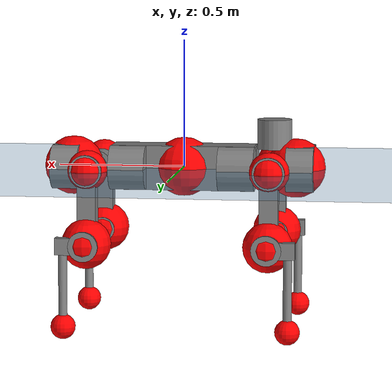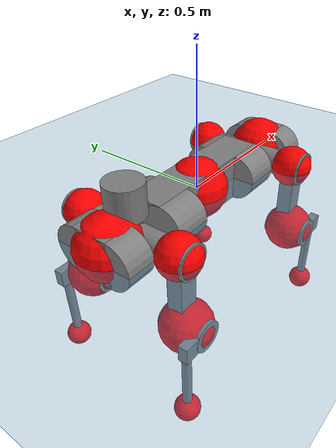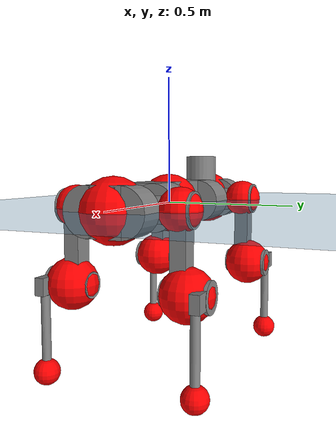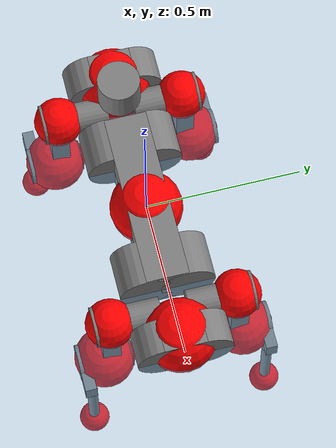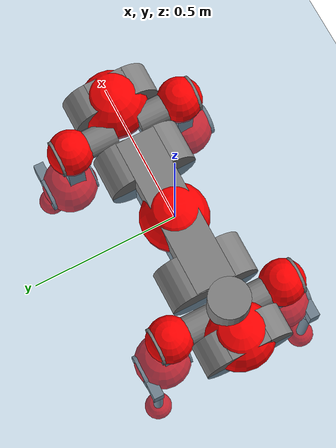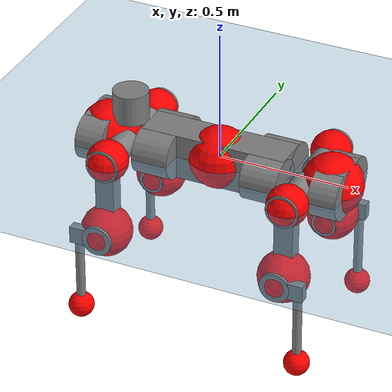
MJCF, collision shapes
<mujoco model="anymal_c">
  <compiler angle="radian" assetdir="assets" balanceinertia="true" inertiafromgeom="false"/>

  <option timestep="0.005" density="1.2" viscosity="2e-05"/>

  <size nkey="1"/>

  <visual>
    <quality shadowsize="8192"/>
    <map shadowclip="0.5"/>
  </visual>

  <default>
    <default class="/">
      <material specular="0" shininess="0.25"/>
      <geom contype="0" conaffinity="0" group="1" solref="-1000 -80"/>
      <site size="0.01 0.005 0.005" group="5"/>
      <general forcelimited="true" forcerange="-80 80" biastype="affine" gainprm="80" biasprm="0 -80 -2"/>
      <default class="anymal_c">
        <joint armature="0.01" damping="0.01" frictionloss="0.1"/>
        <default class="visual">
          <geom type="mesh" group="2"/>
          <default class="visual_zflip"/>
        </default>
        <default class="collision">
          <geom type="cylinder" group="3"/>
          <default class="foot">
            <geom size="0.03 0 0" type="sphere" condim="6" priority="1" friction="0.8 0.02 0.01" solimp="0.015 1 0.03"/>
          </default>
        </default>
      </default>
      <default class="reward_collision_sphere">
        <geom group="5" rgba="1 0 0 1"/>
      </default>
    </default>
  </default>

  <asset>
    <texture type="skybox" colorspace="auto" name="//unnamed_texture_0" builtin="gradient" rgb1="0.95 0.95 0.95" rgb2="0.95 0.95 0.95" width="100" height="600"/>
    <texture type="2d" colorspace="auto" name="texplane" builtin="checker" rgb1="0.345 0.575 0.748" rgb2="0.345 0.575 0.748" markrgb="1 1 1" width="512" height="512"/>
    <texture type="2d" colorspace="linear" name="base" file="base.png"/>
    <texture type="2d" colorspace="linear" name="top_shell" file="top_shell.png"/>
    <texture type="2d" colorspace="linear" name="bottom_shell" file="bottom_shell.png"/>
    <texture type="2d" colorspace="linear" name="remote" file="remote.png"/>
    <texture type="2d" colorspace="linear" name="hatch" file="hatch.png"/>
    <texture type="2d" colorspace="linear" name="handle" file="handle.png"/>
    <texture type="2d" colorspace="linear" name="face" file="face.png"/>
    <texture type="2d" colorspace="linear" name="battery" file="battery.png"/>
    <texture type="2d" colorspace="linear" name="lidar_cage" file="lidar_cage.png"/>
    <texture type="2d" colorspace="linear" name="depth_camera" file="depth_camera.png"/>
    <texture type="2d" colorspace="linear" name="wide_angle_camera" file="wide_angle_camera.png"/>
    <texture type="2d" colorspace="linear" name="lidar" file="lidar.png"/>
    <texture type="2d" colorspace="linear" name="drive" file="drive.png"/>
    <texture type="2d" colorspace="linear" name="hip_l" file="hip_l.png"/>
    <texture type="2d" colorspace="linear" name="shank_l" file="shank_l.png"/>
    <texture type="2d" colorspace="linear" name="foot" file="foot.png"/>
    <texture type="2d" colorspace="linear" name="thigh" file="thigh.png"/>
    <texture type="2d" colorspace="linear" name="shank_r" file="shank_r.png"/>
    <texture type="2d" colorspace="linear" name="hip_r" file="hip_r.png"/>
    <material name="MatPlane" class="/" texture="texplane" texuniform="true" texrepeat="2 2" specular="0.9" shininess="0.5"/>
    <material name="black_plastic" class="/" rgba="0.007 0.007 0.007 1"/>
    <material name="green" class="/" rgba="0.052 0.178 0.033 1"/>
    <material name="red" class="/" rgba="0.178 0.006 0.005 1"/>
    <material name="yellow" class="/" rgba="0.178 0.119 0.006 1"/>
    <material name="lwl" class="/" rgba="0.8 0.8 0.8 1"/>
    <material name="base" class="/" texture="base"/>
    <material name="top_shell" class="/" texture="top_shell"/>
    <material name="bottom_shell" class="/" texture="bottom_shell"/>
    <material name="hip_l" class="/" texture="hip_l"/>
    <material name="thigh" class="/" texture="thigh"/>
    <material name="shank_l" class="/" texture="shank_l"/>
    <material name="foot" class="/" texture="foot"/>
    <material name="hip_r" class="/" texture="hip_r"/>
    <material name="shank" class="/" texture="shank_r"/>
    <material name="hatch" class="/" texture="hatch"/>
    <material name="remote" class="/" texture="remote"/>
    <material name="handle" class="/" texture="handle"/>
    <material name="face" class="/" texture="face"/>
    <material name="depth_camera" class="/" texture="depth_camera"/>
    <material name="wide_angle_camera" class="/" texture="wide_angle_camera"/>
    <material name="battery" class="/" texture="battery"/>
    <material name="lidar_cage" class="/" texture="lidar_cage"/>
    <material name="lidar" class="/" texture="lidar"/>
    <material name="drive" class="/" texture="drive"/>
    <mesh name="base_0" class="/" file="base_0.obj"/>
    <mesh name="base_1" class="/" file="base_1.obj"/>
    <mesh name="base_2" class="/" file="base_2.obj"/>
    <mesh name="base_3" class="/" file="base_3.obj"/>
    <mesh name="base_4" class="/" file="base_4.obj"/>
    <mesh name="base_5" class="/" file="base_5.obj"/>
    <mesh name="top_shell" class="/" file="top_shell.obj"/>
    <mesh name="bottom_shell" class="/" file="bottom_shell.obj"/>
    <mesh name="remote" class="/" file="remote.obj"/>
    <mesh name="handle" class="/" file="handle.obj"/>
    <mesh name="face" class="/" file="face.obj"/>
    <mesh name="wide_angle_camera" class="/" file="wide_angle_camera.obj"/>
    <mesh name="depth_camera" class="/" file="depth_camera.obj"/>
    <mesh name="battery" class="/" file="battery.obj"/>
    <mesh name="lidar_cage" class="/" file="lidar_cage.obj"/>
    <mesh name="lidar" class="/" file="lidar.obj"/>
    <mesh name="drive" class="/" file="drive.obj"/>
    <mesh name="hip_l" class="/" file="hip_l.obj"/>
    <mesh name="thigh" class="/" file="thigh.obj"/>
    <mesh name="shank_l" class="/" file="shank_l.obj"/>
    <mesh name="foot" class="/" file="foot.obj"/>
    <mesh name="hip_r" class="/" file="hip_r.obj"/>
    <mesh name="hatch" class="/" file="hatch.obj"/>
    <mesh name="shank_r" class="/" file="shank_r.obj"/>
  </asset>

  <worldbody>
    <geom name="floor" class="/" size="100 100 0.125" type="plane" group="0" material="MatPlane"/>
    <light name="toplight_shadow" class="/" pos="0 0 5" dir="0.0990148 0.0990148 -0.990148" type="directional" ambient="0.04 0.04 0.04" diffuse="0.55 0.55 0.55" specular="0.12 0.12 0.12"/>
    <light name="toplight_fill" class="/" pos="0 0 5" dir="0.0990148 0.0990148 -0.990148" type="directional" castshadow="false" ambient="0.04 0.04 0.04" diffuse="0.3 0.3 0.3" specular="0.08 0.08 0.08"/>
    <body name="trunk" childclass="anymal_c" pos="3.33836e-06 0.000162169 2.35303e-05" quat="1 9.46663e-06 -6.00411e-07 8.46618e-08">
      <inertial pos="0.00240556 -0.000293695 0.04888" quat="0.504422 0.501109 0.501251 0.493149" mass="17.6458" diaginertia="0.591125 0.438443 0.216395"/>
      <joint name="//unnamed_joint_0" type="free" armature="0" damping="0" frictionloss="0"/>
      <geom name="//unnamed_geom_1" class="visual" material="green" mesh="base_0"/>
      <geom name="//unnamed_geom_2" class="visual" material="yellow" mesh="base_1"/>
      <geom name="//unnamed_geom_3" class="visual" material="red" mesh="base_2"/>
      <geom name="//unnamed_geom_4" class="visual" material="black_plastic" mesh="base_3"/>
      <geom name="//unnamed_geom_5" class="visual" material="lwl" mesh="base_4"/>
      <geom name="//unnamed_geom_6" class="visual" material="base" mesh="base_5"/>
      <geom name="trunk_1" class="collision" size="0.281963 0.0680601 0.0875058" type="box"/>
      <geom name="trunk_2" class="collision" size="0.0875058 0.0704908" pos="0.214115 0.0651715 0" quat="0.707107 0 0.707107 0"/>
      <geom name="trunk_3" class="collision" size="0.0875058 0.0704908" pos="-0.214115 0.0651715 0" quat="0.707107 0 0.707107 0"/>
      <geom name="trunk_4" class="collision" size="0.0875058 0.0704908" pos="0.214115 -0.0651715 0" quat="0.707107 0 0.707107 0"/>
      <geom name="trunk_5" class="collision" size="0.0875058 0.0704908" pos="-0.214115 -0.0651715 0" quat="0.707107 0 0.707107 0"/>
      <geom name="//unnamed_geom_12" class="visual" material="top_shell" mesh="top_shell"/>
      <geom name="//unnamed_geom_13" class="visual" material="bottom_shell" mesh="bottom_shell"/>
      <geom name="//unnamed_geom_14" class="visual" material="remote" mesh="remote"/>
      <geom name="//unnamed_geom_15" class="visual" material="handle" mesh="handle"/>
      <geom name="//unnamed_geom_16" class="visual" pos="0.408049 0 0" quat="1 0 0 0" material="face" mesh="face"/>
      <geom name="trunk_6" class="collision" size="0.0534758 0.0680601 0.0875058" pos="0.462193 0 0" type="box"/>
      <geom name="//unnamed_geom_18" class="collision" size="0.0875058 0.0534758" pos="0.462193 0.0651715 0" quat="0.707107 0 0.707107 0"/>
      <geom name="//unnamed_geom_19" class="collision" size="0.0875058 0.0534758" pos="0.462193 -0.0651715 0" quat="0.707107 0 0.707107 0"/>
      <geom name="//unnamed_geom_20" class="visual" pos="0.454466 0 -0.0293699" quat="0.965926 0 0.258819 0" material="depth_camera" mesh="depth_camera"/>
      <geom name="//unnamed_geom_21" class="visual" pos="0.505016 0 0.014991" material="wide_angle_camera" mesh="wide_angle_camera"/>
      <geom name="//unnamed_geom_22" class="visual_zflip" pos="-0.408049 0 0" quat="0 0 0 1" material="face" mesh="face"/>
      <geom name="trunk_7" class="collision" size="0.0534758 0.0680601 0.0875058" pos="-0.462193 0 0" quat="0 0 0 1" type="box"/>
      <geom name="//unnamed_geom_24" class="collision" size="0.0875058 0.0534758" pos="-0.462193 -0.0651715 0" quat="0 -0.707107 0 0.707107"/>
      <geom name="//unnamed_geom_25" class="collision" size="0.0875058 0.0534758" pos="-0.462193 0.0651715 0" quat="0 -0.707107 0 0.707107"/>
      <geom name="//unnamed_geom_26" class="visual" pos="-0.454466 0 -0.0293699" quat="0 -0.258819 0 0.965926" material="depth_camera" mesh="depth_camera"/>
      <geom name="//unnamed_geom_27" class="visual_zflip" pos="-0.505016 0 0.014991" quat="0 0 0 1" material="wide_angle_camera" mesh="wide_angle_camera"/>
      <geom name="//unnamed_geom_28" class="visual" material="battery" mesh="battery"/>
      <geom name="//unnamed_geom_29" class="visual" pos="0 0.0704857 0.0289618" quat="0.683013 -0.183013 0.183013 0.683013" material="depth_camera" mesh="depth_camera"/>
      <geom name="//unnamed_geom_30" class="visual" pos="0 -0.0704857 0.0289618" quat="0.683013 0.183013 0.183013 -0.683013" material="depth_camera" mesh="depth_camera"/>
      <geom name="//unnamed_geom_31" class="visual" pos="-0.358335 0 0.0736032" quat="1 0 0 0" material="lidar_cage" mesh="lidar_cage"/>
      <geom name="trunk_8" class="collision" size="0.0680601 0.0583372" pos="-0.358335 0 0.133687"/>
      <geom name="//unnamed_geom_33" class="visual" pos="-0.358335 -2.09854e-05 0.1424" quat="0.707107 0 0 -0.707107" material="lidar" mesh="lidar"/>
      <geom name="//unnamed_geom_34" class="visual" pos="0.295232 0.0968512 -1.2141e-09" quat="0.258819 0.965926 0 0" material="drive" mesh="drive"/>
      <geom name="//unnamed_geom_35" class="visual" pos="0.295232 -0.0968512 1.2141e-09" quat="0.258819 -0.965926 0 0" material="drive" mesh="drive"/>
      <geom name="//unnamed_geom_36" class="visual" pos="-0.295232 0.0968512 1.2141e-09" quat="0 0 0.965926 -0.258819" material="drive" mesh="drive"/>
      <geom name="//unnamed_geom_37" class="visual" pos="-0.295232 -0.0968512 -1.2141e-09" quat="0 0 -0.965926 -0.258819" material="drive" mesh="drive"/>
      <geom name="//unnamed_geom_38" class="visual" pos="0.114195 0 0.0731024" quat="1 0 0 0" material="hatch" mesh="hatch"/>
      <geom name="//unnamed_geom_39" class="reward_collision_sphere" size="0.116674"/>
      <geom name="//unnamed_geom_40" class="reward_collision_sphere" size="0.116674" pos="0.442996 0 0"/>
      <geom name="//unnamed_geom_41" class="reward_collision_sphere" size="0.116674" pos="-0.442996 0 0"/>
      <site name="imu" pos="0.243453 0.00310746 0.0471884" size="0.00972287"/>
      <camera name="track" pos="0 -1.86204 0" quat="0.707107 0.707107 0 0" mode="trackcom"/>
      <camera name="ego_camera" pos="0.442996 0 -0.0400561" quat="-0.5 -0.5 0.5 0.5"/>
      <body name="LF_HIP" pos="0.294952 0.0988148 0.000559814" quat="0.258817 0.965926 -3.04437e-06 6.67578e-06">
        <inertial pos="0.0553911 -0.013883 -0.00910712" quat="-0.128827 0.709399 -0.135378 0.679581" mass="2.56705" diaginertia="0.0054104 0.00347122 0.00333703"/>
        <joint name="LF_HAA" pos="0 0 0" axis="0.999997 0.000564906 -0.00218547" range="-0.686366 0.470886" armature="0.00990844" damping="0.0078568" frictionloss="0.0939317"/>
        <geom name="//unnamed_geom_42" class="visual" pos="0 -7.14201e-05 1.17307e-05" quat="0.258819 -0.965926 0 0" material="hip_l" mesh="hip_l"/>
        <geom name="//unnamed_geom_43" class="visual" pos="0.0589677 -0.0707737 -0.0413818" quat="0.183013 -0.683013 0.683013 0.183013" material="drive" mesh="drive"/>
        <geom name="//unnamed_geom_44" class="collision" size="0.0486143 0.0680601" pos="0.0589677 -0.0111348 -0.00691469" quat="-0.353553 -0.612372 0.612372 -0.353553"/>
        <body name="LF_THIGH" pos="0.0591546 -0.0666162 -0.0417559" quat="0.182933 -0.682827 0.683222 0.183007">
          <inertial pos="0.0300862 -0.000777407 -0.245472" quat="0.993331 -0.00455706 -0.0808051 0.0821168" mass="2.82207" diaginertia="0.0278913 0.0208544 0.00420575"/>
          <joint name="LF_HFE" pos="0 0 0" axis="0.999999 -0.000938851 0.00127574" stiffness="0.000820715" range="-3.16044 3.1561" armature="0.00977048" damping="0.0103565" frictionloss="0.0943203"/>
          <geom name="//unnamed_geom_45" class="visual" pos="0.00106275 1.67465e-06 0" quat="0.707107 0 0 -0.707107" material="thigh" mesh="thigh"/>
          <geom name="//unnamed_geom_46" class="collision" size="0.0631987 0.0388915" pos="0.0393775 0 0" quat="0.5 0.5 -0.5 -0.5"/>
          <geom name="//unnamed_geom_47" class="collision" size="0.0364608 0.0291686 0.137398" pos="0.0295331 0 -0.141512" quat="0.707107 0 0 -0.707107" type="box"/>
          <geom name="//unnamed_geom_48" class="visual" pos="0.098739 0 -0.2854" quat="1 0 0 0" material="drive" mesh="drive"/>
          <geom name="//unnamed_geom_49" class="collision" size="0.0486143 0.0680601" pos="0.0298284 0 -0.2854" quat="0.707107 0 0.707107 0"/>
          <geom name="//unnamed_geom_50" class="reward_collision_sphere" size="0.077783" pos="0.0246109 0 0"/>
          <body name="LF_SHANK" pos="0.0992679 -0.00135074 -0.285058" quat="1 -0.000323344 -0.000253875 9.69739e-05">
            <inertial pos="0.00461266 -0.0569662 -0.0821635" quat="0.992947 -0.115838 -0.000978507 -0.0252343" mass="0.538807" diaginertia="0.00943332 0.00655583 0.00111085"/>
            <joint name="LF_KFE" pos="0 0 0" axis="0.999997 -0.00178547 0.00150623" range="-3.16656 3.14366" armature="0.0101724" damping="0.00912522" frictionloss="0.0973678"/>
            <geom name="//unnamed_geom_51" class="visual" pos="0.00034654 0.00184777 0" quat="0.707107 0 0 -0.707107" material="shank_l" mesh="shank_l"/>
            <geom name="LF_kfe_act" class="collision" size="0.0583372 0.0194457" pos="0.0196887 0 0" quat="0.5 0.5 -0.5 -0.5"/>
            <geom name="//unnamed_geom_53" class="collision" size="0.0559055 0.0328147 0.0184735" pos="0.0196887 -0.0535328 0" quat="0.5 0.5 -0.5 -0.5" type="box"/>
            <geom name="//unnamed_geom_54" class="visual" pos="0.0128468 -0.0812879 -0.338444" quat="0.382683 0 0 -0.92388" material="foot" mesh="foot"/>
            <geom name="LF_calf" class="collision" size="0.017015 0.137337" pos="0.0128469 -0.0818833 -0.169222" quat="0.707107 0 0 -0.707107"/>
            <geom name="LF_foot" class="foot" size="0.0298725" pos="0.0128469 -0.0818833 -0.315913" quat="0.707107 0 0 -0.707107"/>
            <geom name="//unnamed_geom_57" class="reward_collision_sphere" size="0.0972287" pos="-0.0492218 0 0"/>
            <geom name="//unnamed_geom_58" class="reward_collision_sphere" size="0.0486143" pos="0.0128469 -0.0818833 -0.315913"/>
            <site name="LF_foot" class="foot" pos="0.0128469 -0.0818833 -0.315913" quat="0.707107 0 0 -0.707107" size="0.00972287"/>
          </body>
        </body>
      </body>
      <body name="RF_HIP" pos="0.295375 -0.0967141 0.00139328" quat="0.258854 -0.965917 2.66003e-05 5.23477e-05">
        <inertial pos="0.0563889 0.0148721 -0.00807512" quat="0.135054 0.67968 0.128999 0.709334" mass="2.53739" diaginertia="0.00542503 0.00336746 0.00330972"/>
        <joint name="RF_HAA" pos="0 0 0" axis="0.999999 -0.000498209 -0.00156036" range="-0.489674 0.721652" armature="0.00963714" damping="0.00880576" frictionloss="0.0949836"/>
        <geom name="//unnamed_geom_59" class="visual" pos="0 7.14195e-05 1.17307e-05" quat="0.258819 0.965926 0 0" material="hip_r" mesh="hip_r"/>
        <geom name="//unnamed_geom_60" class="visual" pos="0.0589677 0.0707737 -0.0413818" quat="0.183013 0.683013 0.683013 -0.183013" material="drive" mesh="drive"/>
        <geom name="//unnamed_geom_61" class="collision" size="0.0486143 0.0680601" pos="0.0589677 0.0111348 -0.00691469" quat="-0.353553 0.612372 0.612372 0.353553"/>
        <body name="RF_THIGH" pos="0.0602619 0.0692992 -0.0433492" quat="0.182934 0.683376 0.682655 -0.18307">
          <inertial pos="0.0313483 -0.0015423 -0.245522" quat="0.992798 -0.00083087 -0.0800077 0.0891679" mass="2.81047" diaginertia="0.0279968 0.0209581 0.00425732"/>
          <joint name="RF_HFE" pos="0 0 0" axis="0.999998 0.00120629 0.00152875" stiffness="0.00241674" range="-3.16312 3.13758" armature="0.00983106" damping="0.0106381" frictionloss="0.097491"/>
          <geom name="//unnamed_geom_62" class="visual" pos="0.00106275 1.67465e-06 0" quat="0.707107 0 0 -0.707107" material="thigh" mesh="thigh"/>
          <geom name="//unnamed_geom_63" class="collision" size="0.0631987 0.0388915" pos="0.0393775 0 0" quat="0.5 0.5 0.5 0.5"/>
          <geom name="//unnamed_geom_64" class="collision" size="0.0364608 0.0291686 0.137398" pos="0.0295331 0 -0.141512" quat="0.707107 0 0 0.707107" type="box"/>
          <geom name="//unnamed_geom_65" class="visual" pos="0.098739 0 -0.2854" quat="1 0 0 0" material="drive" mesh="drive"/>
          <geom name="//unnamed_geom_66" class="collision" size="0.0486143 0.0680601" pos="0.0298284 0 -0.2854" quat="0.707107 0 0.707107 0"/>
          <geom name="//unnamed_geom_67" class="reward_collision_sphere" size="0.077783" pos="0.0246109 0 0"/>
          <body name="RF_SHANK" pos="0.0975784 0.000858184 -0.284698" quat="1 -7.01676e-06 0.000212328 1.28953e-05">
            <inertial pos="0.00482782 0.056919 -0.0811637" quat="0.993075 0.113948 0.000964869 0.0285827" mass="0.54123" diaginertia="0.00944741 0.00645578 0.00112441"/>
            <joint name="RF_KFE" pos="0 0 0" axis="0.999962 -0.00754414 -0.00430413" range="-3.12731 3.14037" armature="0.0101827" damping="0.0127794" frictionloss="0.0955233"/>
            <geom name="//unnamed_geom_68" class="visual" pos="0.000346538 -0.00184777 0" quat="0.707107 0 0 0.707107" material="shank" mesh="shank_r"/>
            <geom name="RF_kfe_act" class="collision" size="0.0583372 0.0194457" pos="0.0196887 0 0" quat="0.5 0.5 0.5 0.5"/>
            <geom name="//unnamed_geom_70" class="collision" size="0.0559055 0.0328147 0.0184735" pos="0.0196887 0.0535328 0" quat="0.5 0.5 0.5 0.5" type="box"/>
            <geom name="//unnamed_geom_71" class="visual" pos="0.012847 0.0812879 -0.338444" quat="0.382683 0 0 0.92388" material="foot" mesh="foot"/>
            <geom name="RF_calf" class="collision" size="0.017015 0.137337" pos="0.0128469 0.0818833 -0.169222" quat="0.707107 0 0 0.707107"/>
            <geom name="RF_foot" class="foot" size="0.0305466" pos="0.0128469 0.0818833 -0.315913" quat="0.707107 0 0 0.707107"/>
            <geom name="//unnamed_geom_74" class="reward_collision_sphere" size="0.0972287" pos="-0.0492218 0 0"/>
            <geom name="//unnamed_geom_75" class="reward_collision_sphere" size="0.0486143" pos="0.0128469 0.0818833 -0.315913"/>
            <site name="RF_foot" class="foot" pos="0.0128469 0.0818833 -0.315913" quat="0.707107 0 0 0.707107" size="0.00972287"/>
          </body>
        </body>
      </body>
      <body name="LH_HIP" pos="-0.294144 0.097801 -0.000645812" quat="0.000115148 0.000297826 0.965954 -0.258715">
        <inertial pos="0.0561402 0.0138424 -0.00930348" quat="0.135256 0.679376 0.127962 0.709774" mass="2.52765" diaginertia="0.00535293 0.00340545 0.0032753"/>
        <joint name="LH_HAA" pos="0 0 0" axis="1 2.56169e-06 -0.000388807" range="-0.485226 0.73637" armature="0.00968458" damping="0.00805982" frictionloss="0.099628"/>
        <geom name="//unnamed_geom_76" class="visual" pos="0 7.14195e-05 1.17307e-05" quat="-0.258819 -0.965926 0 0" material="hip_r" mesh="hip_r"/>
        <geom name="//unnamed_geom_77" class="visual" pos="0.0589677 0.0707737 -0.0413818" quat="0.183013 0.683013 0.683013 -0.183013" material="drive" mesh="drive"/>
        <geom name="//unnamed_geom_78" class="collision" size="0.0486143 0.0680601" pos="0.0589677 0.0111348 -0.00691469" quat="-0.353553 0.612372 0.612372 0.353553"/>
        <body name="LH_THIGH" pos="0.058971 0.0668481 -0.0436796" quat="0.183149 0.683162 0.682838 -0.18297">
          <inertial pos="0.0305933 -0.000417726 -0.246955" quat="0.992975 -0.00200401 -0.0773944 0.0894803" mass="2.85651" diaginertia="0.0277245 0.0205499 0.00418116"/>
          <joint name="LH_HFE" pos="0 0 0" axis="0.999999 -4.73233e-05 0.0010346" stiffness="0.000539254" range="-3.14075 3.12275" armature="0.0100073" damping="0.00582822" frictionloss="0.0968344"/>
          <geom name="//unnamed_geom_79" class="visual" pos="0.00106275 1.67465e-06 0" quat="0.707107 0 0 -0.707107" material="thigh" mesh="thigh"/>
          <geom name="//unnamed_geom_80" class="collision" size="0.0631987 0.0388915" pos="0.0393775 0 0" quat="0.5 0.5 -0.5 -0.5"/>
          <geom name="//unnamed_geom_81" class="collision" size="0.0364608 0.0291686 0.137398" pos="0.0295331 0 -0.141512" quat="0.707107 0 0 -0.707107" type="box"/>
          <geom name="//unnamed_geom_82" class="visual" pos="0.098739 0 -0.2854" quat="1 0 0 0" material="drive" mesh="drive"/>
          <geom name="//unnamed_geom_83" class="collision" size="0.0486143 0.0680601" pos="0.0298284 0 -0.2854" quat="0.707107 0 0.707107 0"/>
          <geom name="//unnamed_geom_84" class="reward_collision_sphere" size="0.077783" pos="0.0246109 0 0"/>
          <body name="LH_SHANK" pos="0.0996291 -0.00234692 -0.286368" quat="1 -0.000148483 0.000146886 3.32446e-05">
            <inertial pos="0.0053594 0.0568649 -0.0812944" quat="0.992922 0.116308 -0.00150838 0.0240024" mass="0.529194" diaginertia="0.00934773 0.00641501 0.00111579"/>
            <joint name="LH_KFE" pos="0 0 0" axis="0.999999 -0.0015425 -0.000575065" range="-3.11807 3.14469" armature="0.00961226" damping="0.0138918" frictionloss="0.0968844"/>
            <geom name="//unnamed_geom_85" class="visual" pos="0.000346538 -0.00184777 0" quat="-0.707107 0 0 -0.707107" material="shank" mesh="shank_r"/>
            <geom name="LH_kfe_act" class="collision" size="0.0583372 0.0194457" pos="0.0196887 0 0" quat="0.5 0.5 -0.5 -0.5"/>
            <geom name="//unnamed_geom_87" class="collision" size="0.0559055 0.0328147 0.0184735" pos="0.0196887 0.0535328 0" quat="0.5 0.5 -0.5 -0.5" type="box"/>
            <geom name="//unnamed_geom_88" class="visual" pos="0.012847 0.0812879 -0.338444" quat="-0.382683 0 0 -0.92388" material="foot" mesh="foot"/>
            <geom name="LH_calf" class="collision" size="0.017015 0.137337" pos="0.0128469 0.0818833 -0.169222" quat="0.707107 0 0 -0.707107"/>
            <geom name="LH_foot" class="foot" size="0.0295853" pos="0.0128469 0.0818833 -0.315913" quat="0.707107 0 0 -0.707107"/>
            <geom name="//unnamed_geom_91" class="reward_collision_sphere" size="0.0972287" pos="-0.0492218 0 0"/>
            <geom name="//unnamed_geom_92" class="reward_collision_sphere" size="0.0486143" pos="0.0128469 0.0818833 -0.315913"/>
            <site name="LH_foot" class="foot" pos="0.0128469 0.0818833 -0.315913" quat="0.707107 0 0 -0.707107" size="0.00972287"/>
          </body>
        </body>
      </body>
      <body name="RH_HIP" pos="-0.29497 -0.097879 0.000907982" quat="-2.4023e-05 5.55595e-06 -0.965923 -0.25883">
        <inertial pos="0.0558805 -0.0140322 -0.0078229" quat="-0.127823 0.710566 -0.135323 0.67856" mass="2.51606" diaginertia="0.00533384 0.00337521 0.00331185"/>
        <joint name="RH_HAA" pos="0 0 0" axis="0.999999 0.00112394 0.000312034" range="-0.732167 0.476086" armature="0.00971654" damping="0.0085779" frictionloss="0.0982267"/>
        <geom name="//unnamed_geom_93" class="visual" pos="0 -7.14201e-05 1.17307e-05" quat="-0.258819 0.965926 0 0" material="hip_l" mesh="hip_l"/>
        <geom name="//unnamed_geom_94" class="visual" pos="0.0589677 -0.0707737 -0.0413818" quat="-0.183013 0.683013 -0.683013 -0.183013" material="drive" mesh="drive"/>
        <geom name="//unnamed_geom_95" class="collision" size="0.0486143 0.0680601" pos="0.0589677 -0.0111348 -0.00691469" quat="0.353553 0.612372 -0.612372 0.353553"/>
        <body name="RH_THIGH" pos="0.0584324 -0.0678267 -0.0427195" quat="-0.18291 0.683275 -0.682704 -0.183287">
          <inertial pos="0.0305304 -0.000895408 -0.246696" quat="0.993194 -0.00443412 -0.0817563 0.0828358" mass="2.84197" diaginertia="0.0282654 0.0210705 0.00426316"/>
          <joint name="RH_HFE" pos="0 0 0" axis="0.999992 0.000523362 -0.00384964" range="-3.13068 3.12513" armature="0.00988572" damping="0.0058437" frictionloss="0.0997695"/>
          <geom name="//unnamed_geom_96" class="visual" pos="0.00106275 1.67465e-06 0" quat="0.707107 0 0 -0.707107" material="thigh" mesh="thigh"/>
          <geom name="//unnamed_geom_97" class="collision" size="0.0631987 0.0388915" pos="0.0393775 0 0" quat="0.5 0.5 0.5 0.5"/>
          <geom name="//unnamed_geom_98" class="collision" size="0.0364608 0.0291686 0.137398" pos="0.0295331 0 -0.141512" quat="0.707107 0 0 0.707107" type="box"/>
          <geom name="//unnamed_geom_99" class="visual" pos="0.098739 0 -0.2854" quat="1 0 0 0" material="drive" mesh="drive"/>
          <geom name="//unnamed_geom_100" class="collision" size="0.0486143 0.0680601" pos="0.0298284 0 -0.2854" quat="0.707107 0 0.707107 0"/>
          <geom name="//unnamed_geom_101" class="reward_collision_sphere" size="0.077783" pos="0.0246109 0 0"/>
          <body name="RH_SHANK" pos="0.0963598 0.000827184 -0.284711" quat="1 -0.000305128 -0.000368293 -0.000297563">
            <inertial pos="0.00711766 -0.0569875 -0.0807191" quat="0.992902 -0.115565 0.000711987 -0.0281122" mass="0.543682" diaginertia="0.00951378 0.00648598 0.00113611"/>
            <joint name="RH_KFE" pos="0 0 0" axis="1 0.000925325 -0.000198713" range="-3.12488 3.15411" armature="0.00935414" damping="0.00854597" frictionloss="0.0982321"/>
            <geom name="//unnamed_geom_102" class="visual" pos="0.00034654 0.00184777 0" quat="0.707107 0 0 -0.707107" material="shank_l" mesh="shank_l"/>
            <geom name="RH_kfe_act" class="collision" size="0.0583372 0.0194457" pos="0.0196887 0 0" quat="0.5 0.5 0.5 0.5"/>
            <geom name="//unnamed_geom_104" class="collision" size="0.0559055 0.0328147 0.0184735" pos="0.0196887 -0.0535328 0" quat="0.5 0.5 0.5 0.5" type="box"/>
            <geom name="//unnamed_geom_105" class="visual" pos="0.0128468 -0.0812879 -0.338444" quat="0.382683 0 0 -0.92388" material="foot" mesh="foot"/>
            <geom name="RH_calf" class="collision" size="0.017015 0.137337" pos="0.0128469 -0.0818833 -0.169222" quat="0.707107 0 0 0.707107"/>
            <geom name="RH_foot" class="foot" size="0.0291183" pos="0.0128469 -0.0818833 -0.315913" quat="0.707107 0 0 0.707107"/>
            <geom name="//unnamed_geom_108" class="reward_collision_sphere" size="0.0972287" pos="-0.0492218 0 0"/>
            <geom name="//unnamed_geom_109" class="reward_collision_sphere" size="0.0486143" pos="0.0128469 -0.0818833 -0.315913"/>
            <site name="RH_foot" class="foot" pos="0.0128469 -0.0818833 -0.315913" quat="0.707107 0 0 0.707107" size="0.00972287"/>
          </body>
        </body>
      </body>
    </body>
  </worldbody>

  <contact>
    <pair class="/" geom1="floor" geom2="LF_foot" name="//unnamed_contact_0"/>
    <pair class="/" geom1="floor" geom2="RF_foot" name="//unnamed_contact_1"/>
    <pair class="/" geom1="floor" geom2="LH_foot" name="//unnamed_contact_2"/>
    <pair class="/" geom1="floor" geom2="RH_foot" name="//unnamed_contact_3"/>
  </contact>

  <actuator>
    <general name="LF_HAA" class="/" joint="LF_HAA" forcerange="-83.4868 83.4868" gainprm="79.1619" biasprm="0 -79.1619 -1.87751"/>
    <general name="LF_HFE" class="/" joint="LF_HFE" forcerange="-80.4281 80.4281" gainprm="79.1619" biasprm="0 -79.1619 -1.87751"/>
    <general name="LF_KFE" class="/" joint="LF_KFE" forcerange="-76.7412 76.7412" gainprm="79.1619" biasprm="0 -79.1619 -1.87751"/>
    <general name="RF_HAA" class="/" joint="RF_HAA" forcerange="-81.5348 81.5348" gainprm="79.1619" biasprm="0 -79.1619 -1.87751"/>
    <general name="RF_HFE" class="/" joint="RF_HFE" forcerange="-82.602 82.602" gainprm="79.1619" biasprm="0 -79.1619 -1.87751"/>
    <general name="RF_KFE" class="/" joint="RF_KFE" forcerange="-76.2405 76.2405" gainprm="79.1619" biasprm="0 -79.1619 -1.87751"/>
    <general name="LH_HAA" class="/" joint="LH_HAA" forcerange="-76.8201 76.8201" gainprm="79.1619" biasprm="0 -79.1619 -1.87751"/>
    <general name="LH_HFE" class="/" joint="LH_HFE" forcerange="-79.3858 79.3858" gainprm="79.1619" biasprm="0 -79.1619 -1.87751"/>
    <general name="LH_KFE" class="/" joint="LH_KFE" forcerange="-81.1518 81.1518" gainprm="79.1619" biasprm="0 -79.1619 -1.87751"/>
    <general name="RH_HAA" class="/" joint="RH_HAA" forcerange="-74.8427 74.8427" gainprm="79.1619" biasprm="0 -79.1619 -1.87751"/>
    <general name="RH_HFE" class="/" joint="RH_HFE" forcerange="-77.1065 77.1065" gainprm="79.1619" biasprm="0 -79.1619 -1.87751"/>
    <general name="RH_KFE" class="/" joint="RH_KFE" forcerange="-77.7827 77.7827" gainprm="79.1619" biasprm="0 -79.1619 -1.87751"/>
  </actuator>

  <sensor>
    <gyro site="imu" name="imu_angular_velocity"/>
    <velocimeter site="imu" name="imu_linear_velocity"/>
    <framelinvel objtype="site" objname="LF_foot" name="LF_foot_global_linear_velocity"/>
    <framelinvel objtype="site" objname="RF_foot" name="RF_foot_global_linear_velocity"/>
    <framelinvel objtype="site" objname="LH_foot" name="LH_foot_global_linear_velocity"/>
    <framelinvel objtype="site" objname="RH_foot" name="RH_foot_global_linear_velocity"/>
  </sensor>

  <keyframe>
    <key name="home" qpos="0 0 0.55 1 0 0 0 0 0.4 -0.8 0 -0.4 0.8 0 -0.4 0.8 0 0.4 -0.8"/>
  </keyframe>
</mujoco>
